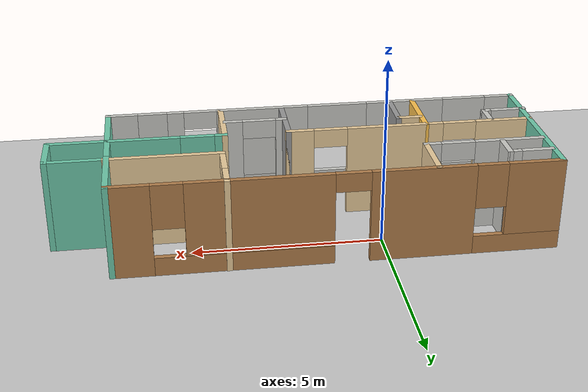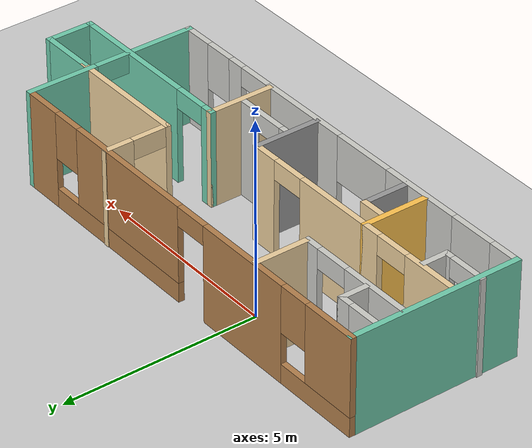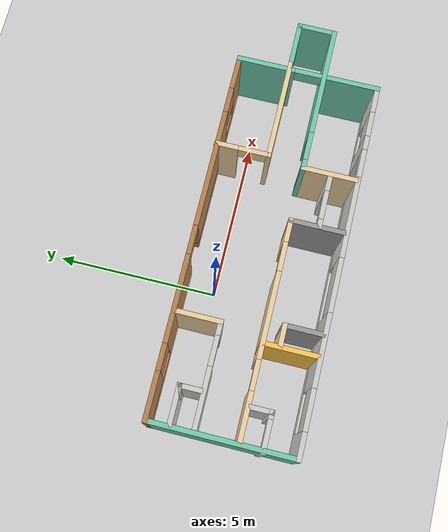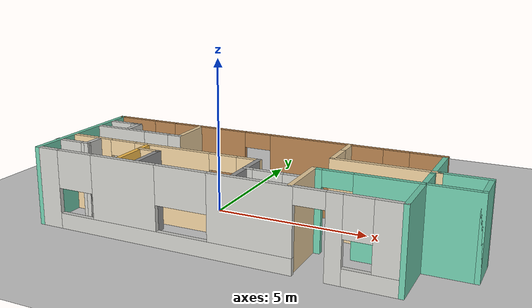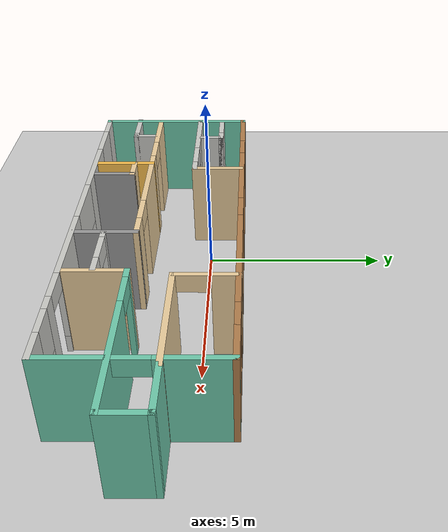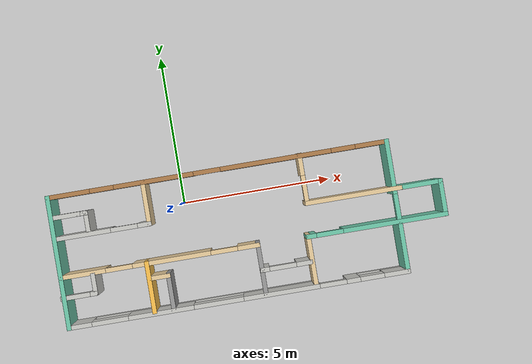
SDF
<sdf version="1.6">
 <world name="default">
  <model name="ground_plane">
   <static>1</static>
   <link name="link">
    <collision name="collision">
     <geometry><plane><normal>0 0 1</normal><size>100 100</size></plane></geometry>
     <surface>
      <contact><collide_bitmask>65535</collide_bitmask></contact>
      <friction><ode><mu>100</mu><mu2>50</mu2></ode></friction>
     </surface>
    </collision>
    <visual name="visual">
     <cast_shadows>0</cast_shadows>
     <geometry><plane><normal>0 0 1</normal><size>100 100</size></plane></geometry>
     <material>
      <script><uri>file://media/materials/scripts/gazebo.material</uri><name>Gazebo/Grey</name></script>
     </material>
    </visual>
   </link>
  </model>
  <model name="world">
   <pose>2.0565 -1.24663 0 0 -0 0</pose>
   <link name="Wall_1">
    <collision name="Wall_1_Collision">
     <geometry><box><size>4.5 0.15 2.5</size></box></geometry>
     <pose>0 0 1.25 0 -0 0</pose>
    </collision>
    <visual name="Wall_1_Visual">
     <pose>0 0 1.25 0 -0 0</pose>
     <geometry><box><size>4.5 0.15 2.5</size></box></geometry>
     <material>
      <script><uri>file://media/materials/scripts/gazebo.material</uri><name>Gazebo/Grey</name></script>
      <ambient>0.435294 0.796078 0.67451 1</ambient>
     </material>
     <meta><layer>0</layer></meta>
    </visual>
    <pose>-6.42328 -0.007904 0 0 0 -1.5708</pose>
   </link>
   <link name="Wall_10">
    <pose>4.16351 -0.517095 0 0 -0 0</pose>
    <visual name="Wall_10_Visual_0">
     <pose>-2.20046 0 1.25 0 -0 0</pose>
     <geometry><box><size>0.349089 0.15 2.5</size></box></geometry>
     <material>
      <script><uri>file://media/materials/scripts/gazebo.material</uri><name>Gazebo/Grey</name></script>
      <ambient>0.435294 0.796078 0.67451 1</ambient>
     </material>
     <meta><layer>0</layer></meta>
    </visual>
    <collision name="Wall_10_Collision_0">
     <geometry><box><size>0.349089 0.15 2.5</size></box></geometry>
     <pose>-2.20046 0 1.25 0 -0 0</pose>
    </collision>
    <visual name="Wall_10_Visual_1">
     <pose>0.624544 0 1.25 0 -0 0</pose>
     <geometry><box><size>3.50091 0.15 2.5</size></box></geometry>
     <material>
      <script><uri>file://media/materials/scripts/gazebo.material</uri><name>Gazebo/Grey</name></script>
      <ambient>0.435294 0.796078 0.67451 1</ambient>
     </material>
     <meta><layer>0</layer></meta>
    </visual>
    <collision name="Wall_10_Collision_1">
     <geometry><box><size>3.50091 0.15 2.5</size></box></geometry>
     <pose>0.624544 0 1.25 0 -0 0</pose>
    </collision>
    <visual name="Wall_10_Visual_2">
     <pose>-1.57591 0 2.25 0 -0 0</pose>
     <geometry><box><size>0.9 0.15 0.5</size></box></geometry>
     <material>
      <script><uri>file://media/materials/scripts/gazebo.material</uri><name>Gazebo/Grey</name></script>
      <ambient>0.435294 0.796078 0.67451 1</ambient>
     </material>
     <meta><layer>0</layer></meta>
    </visual>
    <collision name="Wall_10_Collision_2">
     <geometry><box><size>0.9 0.15 0.5</size></box></geometry>
     <pose>-1.57591 0 2.25 0 -0 0</pose>
    </collision>
   </link>
   <link name="Wall_11">
    <collision name="Wall_11_Collision">
     <geometry><box><size>1.25 0.15 2.5</size></box></geometry>
     <pose>0 0 1.25 0 -0 0</pose>
    </collision>
    <visual name="Wall_11_Visual">
     <pose>0 0 1.25 0 -0 0</pose>
     <geometry><box><size>1.25 0.15 2.5</size></box></geometry>
     <material>
      <script><uri>file://media/materials/scripts/gazebo.material</uri><name>Gazebo/Grey</name></script>
      <ambient>0.435294 0.796078 0.67451 1</ambient>
     </material>
     <meta><layer>0</layer></meta>
    </visual>
    <pose>6.46351 0.032905 0 0 -0 1.5708</pose>
   </link>
   <link name="Wall_12">
    <collision name="Wall_12_Collision">
     <geometry><box><size>1.5 0.15 2.5</size></box></geometry>
     <pose>0 0 1.25 0 -0 0</pose>
    </collision>
    <visual name="Wall_12_Visual">
     <pose>0 0 1.25 0 -0 0</pose>
     <geometry><box><size>1.5 0.15 2.5</size></box></geometry>
     <material>
      <script><uri>file://media/materials/scripts/gazebo.material</uri><name>Gazebo/Grey</name></script>
      <ambient>0.435294 0.796078 0.67451 1</ambient>
     </material>
     <meta><layer>0</layer></meta>
    </visual>
    <pose>5.78851 0.582905 0 0 -0 3.14159</pose>
   </link>
   <link name="Wall_14">
    <collision name="Wall_14_Collision">
     <geometry><box><size>1.75 0.15 2.5</size></box></geometry>
     <pose>0 0 1.25 0 -0 0</pose>
    </collision>
    <visual name="Wall_14_Visual">
     <pose>0 0 1.25 0 -0 0</pose>
     <geometry><box><size>1.75 0.15 2.5</size></box></geometry>
     <material>
      <script><uri>file://media/materials/scripts/gazebo.material</uri><name>Gazebo/Grey</name></script>
      <ambient>1 0.764706 0.305882 1</ambient>
     </material>
     <meta><layer>0</layer></meta>
    </visual>
    <pose>-3.54704 -1.30801 0 0 0 -1.5708</pose>
   </link>
   <link name="Wall_16">
    <pose>-4.79283 0.779259 0 0 -0 0</pose>
    <visual name="Wall_16_Visual_0">
     <pose>-0.68614 0 1.25 0 -0 0</pose>
     <geometry><box><size>1.87772 0.15 2.5</size></box></geometry>
     <material>
      <script><uri>file://media/materials/scripts/gazebo.material</uri><name>Gazebo/CeilingTiled</name></script>
      <ambient>0.921569 0.807843 0.615686 1</ambient>
     </material>
     <meta><layer>0</layer></meta>
    </visual>
    <collision name="Wall_16_Collision_0">
     <geometry><box><size>1.87772 0.15 2.5</size></box></geometry>
     <pose>-0.68614 0 1.25 0 -0 0</pose>
    </collision>
    <visual name="Wall_16_Visual_1">
     <pose>1.38886 0 1.25 0 -0 0</pose>
     <geometry><box><size>0.47228 0.15 2.5</size></box></geometry>
     <material>
      <script><uri>file://media/materials/scripts/gazebo.material</uri><name>Gazebo/CeilingTiled</name></script>
      <ambient>0.921569 0.807843 0.615686 1</ambient>
     </material>
     <meta><layer>0</layer></meta>
    </visual>
    <collision name="Wall_16_Collision_1">
     <geometry><box><size>0.47228 0.15 2.5</size></box></geometry>
     <pose>1.38886 0 1.25 0 -0 0</pose>
    </collision>
    <visual name="Wall_16_Visual_2">
     <pose>0.70272 0 2.25 0 -0 0</pose>
     <geometry><box><size>0.9 0.15 0.5</size></box></geometry>
     <material>
      <script><uri>file://media/materials/scripts/gazebo.material</uri><name>Gazebo/CeilingTiled</name></script>
      <ambient>0.921569 0.807843 0.615686 1</ambient>
     </material>
     <meta><layer>0</layer></meta>
    </visual>
    <collision name="Wall_16_Collision_2">
     <geometry><box><size>0.9 0.15 0.5</size></box></geometry>
     <pose>0.70272 0 2.25 0 -0 0</pose>
    </collision>
   </link>
   <link name="Wall_17">
    <collision name="Wall_17_Collision">
     <geometry><box><size>1.5 0.15 2.5</size></box></geometry>
     <pose>0 0 1.25 0 -0 0</pose>
    </collision>
    <visual name="Wall_17_Visual">
     <pose>0 0 1.25 0 -0 0</pose>
     <geometry><box><size>1.5 0.15 2.5</size></box></geometry>
     <material>
      <script><uri>file://media/materials/scripts/gazebo.material</uri><name>Gazebo/Grey</name></script>
      <ambient>0.921569 0.807843 0.615686 1</ambient>
     </material>
     <meta><layer>0</layer></meta>
    </visual>
    <pose>-3.24283 1.45426 0 0 -0 1.5708</pose>
   </link>
   <link name="Wall_2">
    <pose>-0.748282 -2.1829 0 0 -0 0</pose>
    <visual name="Wall_2_Visual_0">
     <pose>-5.32921 0 1.25 0 -0 0</pose>
     <geometry><box><size>0.841587 0.15 2.5</size></box></geometry>
     <material>
      <script><uri>file://media/materials/scripts/gazebo.material</uri><name>Gazebo/CeilingTiled</name></script>
      <ambient>0.435294 0.796078 0.67451 1</ambient>
     </material>
     <meta><layer>0</layer></meta>
    </visual>
    <collision name="Wall_2_Collision_0">
     <geometry><box><size>0.841587 0.15 2.5</size></box></geometry>
     <pose>-5.32921 0 1.25 0 -0 0</pose>
    </collision>
    <visual name="Wall_2_Visual_1">
     <pose>3.85366 0 1.25 0 -0 0</pose>
     <geometry><box><size>0.457382 0.15 2.5</size></box></geometry>
     <material>
      <script><uri>file://media/materials/scripts/gazebo.material</uri><name>Gazebo/CeilingTiled</name></script>
      <ambient>0.435294 0.796078 0.67451 1</ambient>
     </material>
     <meta><layer>0</layer></meta>
    </visual>
    <collision name="Wall_2_Collision_1">
     <geometry><box><size>0.457382 0.15 2.5</size></box></geometry>
     <pose>3.85366 0 1.25 0 -0 0</pose>
    </collision>
    <visual name="Wall_2_Visual_2">
     <pose>-1.09172 0 0.25 0 -0 0</pose>
     <geometry><box><size>7.63338 0.15 0.5</size></box></geometry>
     <material>
      <script><uri>file://media/materials/scripts/gazebo.material</uri><name>Gazebo/CeilingTiled</name></script>
      <ambient>0.435294 0.796078 0.67451 1</ambient>
     </material>
     <meta><layer>0</layer></meta>
    </visual>
    <collision name="Wall_2_Collision_2">
     <geometry><box><size>7.63338 0.15 0.5</size></box></geometry>
     <pose>-1.09172 0 0.25 0 -0 0</pose>
    </collision>
    <visual name="Wall_2_Visual_3">
     <pose>4.91618 0 0.25 0 -0 0</pose>
     <geometry><box><size>1.66765 0.15 0.5</size></box></geometry>
     <material>
      <script><uri>file://media/materials/scripts/gazebo.material</uri><name>Gazebo/CeilingTiled</name></script>
      <ambient>0.435294 0.796078 0.67451 1</ambient>
     </material>
     <meta><layer>0</layer></meta>
    </visual>
    <collision name="Wall_2_Collision_3">
     <geometry><box><size>1.66765 0.15 0.5</size></box></geometry>
     <pose>4.91618 0 0.25 0 -0 0</pose>
    </collision>
    <visual name="Wall_2_Visual_4">
     <pose>-2.58757 0 1.5 0 -0 0</pose>
     <geometry><box><size>2.19692 0.15 2</size></box></geometry>
     <material>
      <script><uri>file://media/materials/scripts/gazebo.material</uri><name>Gazebo/CeilingTiled</name></script>
      <ambient>0.435294 0.796078 0.67451 1</ambient>
     </material>
     <meta><layer>0</layer></meta>
    </visual>
    <collision name="Wall_2_Collision_4">
     <geometry><box><size>2.19692 0.15 2</size></box></geometry>
     <pose>-2.58757 0 1.5 0 -0 0</pose>
    </collision>
    <visual name="Wall_2_Visual_5">
     <pose>1.45037 0 1.5 0 -0 0</pose>
     <geometry><box><size>2.54919 0.15 2</size></box></geometry>
     <material>
      <script><uri>file://media/materials/scripts/gazebo.material</uri><name>Gazebo/CeilingTiled</name></script>
      <ambient>0.435294 0.796078 0.67451 1</ambient>
     </material>
     <meta><layer>0</layer></meta>
    </visual>
    <collision name="Wall_2_Collision_5">
     <geometry><box><size>2.54919 0.15 2</size></box></geometry>
     <pose>1.45037 0 1.5 0 -0 0</pose>
    </collision>
    <visual name="Wall_2_Visual_6">
     <pose>1.45037 0 1.5 0 -0 0</pose>
     <geometry><box><size>2.54919 0.15 2</size></box></geometry>
     <material>
      <script><uri>file://media/materials/scripts/gazebo.material</uri><name>Gazebo/CeilingTiled</name></script>
      <ambient>0.435294 0.796078 0.67451 1</ambient>
     </material>
     <meta><layer>0</layer></meta>
    </visual>
    <collision name="Wall_2_Collision_6">
     <geometry><box><size>2.54919 0.15 2</size></box></geometry>
     <pose>1.45037 0 1.5 0 -0 0</pose>
    </collision>
    <visual name="Wall_2_Visual_7">
     <pose>5.31618 0 1.5 0 -0 0</pose>
     <geometry><box><size>0.867646 0.15 2</size></box></geometry>
     <material>
      <script><uri>file://media/materials/scripts/gazebo.material</uri><name>Gazebo/CeilingTiled</name></script>
      <ambient>0.435294 0.796078 0.67451 1</ambient>
     </material>
     <meta><layer>0</layer></meta>
    </visual>
    <collision name="Wall_2_Collision_7">
     <geometry><box><size>0.867646 0.15 2</size></box></geometry>
     <pose>5.31618 0 1.5 0 -0 0</pose>
    </collision>
    <visual name="Wall_2_Visual_8">
     <pose>-4.29722 0 1.9 0 -0 0</pose>
     <geometry><box><size>1.22239 0.15 1.2</size></box></geometry>
     <material>
      <script><uri>file://media/materials/scripts/gazebo.material</uri><name>Gazebo/CeilingTiled</name></script>
      <ambient>0.435294 0.796078 0.67451 1</ambient>
     </material>
     <meta><layer>0</layer></meta>
    </visual>
    <collision name="Wall_2_Collision_8">
     <geometry><box><size>1.22239 0.15 1.2</size></box></geometry>
     <pose>-4.29722 0 1.9 0 -0 0</pose>
    </collision>
    <visual name="Wall_2_Visual_9">
     <pose>4.48235 0 1.9 0 -0 0</pose>
     <geometry><box><size>0.8 0.15 1.2</size></box></geometry>
     <material>
      <script><uri>file://media/materials/scripts/gazebo.material</uri><name>Gazebo/CeilingTiled</name></script>
      <ambient>0.435294 0.796078 0.67451 1</ambient>
     </material>
     <meta><layer>0</layer></meta>
    </visual>
    <collision name="Wall_2_Collision_9">
     <geometry><box><size>0.8 0.15 1.2</size></box></geometry>
     <pose>4.48235 0 1.9 0 -0 0</pose>
    </collision>
    <visual name="Wall_2_Visual_10">
     <pose>-0.656664 0 1.9 0 -0 0</pose>
     <geometry><box><size>1.66488 0.15 1.2</size></box></geometry>
     <material>
      <script><uri>file://media/materials/scripts/gazebo.material</uri><name>Gazebo/CeilingTiled</name></script>
      <ambient>0.435294 0.796078 0.67451 1</ambient>
     </material>
     <meta><layer>0</layer></meta>
    </visual>
    <collision name="Wall_2_Collision_10">
     <geometry><box><size>1.66488 0.15 1.2</size></box></geometry>
     <pose>-0.656664 0 1.9 0 -0 0</pose>
    </collision>
    <visual name="Wall_2_Visual_11">
     <pose>3.17497 0 2.25 0 -0 0</pose>
     <geometry><box><size>0.9 0.15 0.5</size></box></geometry>
     <material>
      <script><uri>file://media/materials/scripts/gazebo.material</uri><name>Gazebo/CeilingTiled</name></script>
      <ambient>0.435294 0.796078 0.67451 1</ambient>
     </material>
     <meta><layer>0</layer></meta>
    </visual>
    <collision name="Wall_2_Collision_11">
     <geometry><box><size>0.9 0.15 0.5</size></box></geometry>
     <pose>3.17497 0 2.25 0 -0 0</pose>
    </collision>
    <visual name="Wall_2_Visual_12">
     <pose>3.17497 0 2.25 0 -0 0</pose>
     <geometry><box><size>0.9 0.15 0.5</size></box></geometry>
     <material>
      <script><uri>file://media/materials/scripts/gazebo.material</uri><name>Gazebo/CeilingTiled</name></script>
      <ambient>0.435294 0.796078 0.67451 1</ambient>
     </material>
     <meta><layer>0</layer></meta>
    </visual>
    <collision name="Wall_2_Collision_12">
     <geometry><box><size>0.9 0.15 0.5</size></box></geometry>
     <pose>3.17497 0 2.25 0 -0 0</pose>
    </collision>
   </link>
   <link name="Wall_21">
    <collision name="Wall_21_Collision">
     <geometry><box><size>3.25 0.15 2.5</size></box></geometry>
     <pose>0 0 1.25 0 -0 0</pose>
    </collision>
    <visual name="Wall_21_Visual">
     <pose>0 0 1.25 0 -0 0</pose>
     <geometry><box><size>3.25 0.15 2.5</size></box></geometry>
     <material>
      <script><uri>file://media/materials/scripts/gazebo.material</uri><name>Gazebo/Grey</name></script>
      <ambient>0.921569 0.807843 0.615686 1</ambient>
     </material>
     <meta><layer>0</layer></meta>
    </visual>
    <pose>3.56351 0.582905 0 0 -0 3.14159</pose>
   </link>
   <link name="Wall_22">
    <pose>2.01351 1.38291 0 0 -0 1.5708</pose>
    <visual name="Wall_22_Visual_0">
     <pose>-0.823528 0 1.25 0 -0 0</pose>
     <geometry><box><size>0.102944 0.15 2.5</size></box></geometry>
     <material>
      <script><uri>file://media/materials/scripts/gazebo.material</uri><name>Gazebo/Grey</name></script>
      <ambient>0.921569 0.807843 0.615686 1</ambient>
     </material>
     <meta><layer>0</layer></meta>
    </visual>
    <collision name="Wall_22_Collision_0">
     <geometry><box><size>0.102944 0.15 2.5</size></box></geometry>
     <pose>-0.823528 0 1.25 0 -0 0</pose>
    </collision>
    <visual name="Wall_22_Visual_1">
     <pose>0.501472 0 1.25 0 -0 0</pose>
     <geometry><box><size>0.747056 0.15 2.5</size></box></geometry>
     <material>
      <script><uri>file://media/materials/scripts/gazebo.material</uri><name>Gazebo/Grey</name></script>
      <ambient>0.921569 0.807843 0.615686 1</ambient>
     </material>
     <meta><layer>0</layer></meta>
    </visual>
    <collision name="Wall_22_Collision_1">
     <geometry><box><size>0.747056 0.15 2.5</size></box></geometry>
     <pose>0.501472 0 1.25 0 -0 0</pose>
    </collision>
    <visual name="Wall_22_Visual_2">
     <pose>-0.322056 0 2.25 0 -0 0</pose>
     <geometry><box><size>0.9 0.15 0.5</size></box></geometry>
     <material>
      <script><uri>file://media/materials/scripts/gazebo.material</uri><name>Gazebo/Grey</name></script>
      <ambient>0.921569 0.807843 0.615686 1</ambient>
     </material>
     <meta><layer>0</layer></meta>
    </visual>
    <collision name="Wall_22_Collision_2">
     <geometry><box><size>0.9 0.15 0.5</size></box></geometry>
     <pose>-0.322056 0 2.25 0 -0 0</pose>
    </collision>
   </link>
   <link name="Wall_24">
    <pose>-5.81294 1.48323 0 0 -0 0</pose>
    <visual name="Wall_24_Visual_0">
     <pose>0 0 1.25 0 -0 0</pose>
     <geometry><box><size>1.25 0.15 2.5</size></box></geometry>
     <material>
      <script><uri>file://media/materials/scripts/gazebo.material</uri><name>Gazebo/CeilingTiled</name></script>
      <ambient>0.921569 0.807843 0.615686 1</ambient>
     </material>
     <meta><layer>0</layer></meta>
    </visual>
    <collision name="Wall_24_Collision_0">
     <geometry><box><size>1.25 0.15 2.5</size></box></geometry>
     <pose>0 0 1.25 0 -0 0</pose>
    </collision>
    <visual name="Wall_24_Visual_1">
     <pose>0.433465 0 1.25 0 -0 0</pose>
     <geometry><box><size>0.383069 0.15 2.5</size></box></geometry>
     <material>
      <script><uri>file://media/materials/scripts/gazebo.material</uri><name>Gazebo/CeilingTiled</name></script>
      <ambient>0.921569 0.807843 0.615686 1</ambient>
     </material>
     <meta><layer>0</layer></meta>
    </visual>
    <collision name="Wall_24_Collision_1">
     <geometry><box><size>0.383069 0.15 2.5</size></box></geometry>
     <pose>0.433465 0 1.25 0 -0 0</pose>
    </collision>
   </link>
   <link name="Wall_27">
    <collision name="Wall_27_Collision">
     <geometry><box><size>0.75 0.15 2.5</size></box></geometry>
     <pose>0 0 1.25 0 -0 0</pose>
    </collision>
    <visual name="Wall_27_Visual">
     <pose>0 0 1.25 0 -0 0</pose>
     <geometry><box><size>0.75 0.15 2.5</size></box></geometry>
     <material>
      <script><uri>file://media/materials/scripts/gazebo.material</uri><name>Gazebo/CeilingTiled</name></script>
      <ambient>0.921569 0.807843 0.615686 1</ambient>
     </material>
     <meta><layer>0</layer></meta>
    </visual>
    <pose>-5.26294 1.18323 0 0 0 -1.5708</pose>
   </link>
   <link name="Wall_29">
    <pose>-5.91351 -1.19187 0 0 -0 0</pose>
    <visual name="Wall_29_Visual_0">
     <pose>-0.581194 0 1.25 0 -0 0</pose>
     <geometry><box><size>0.087612 0.15 2.5</size></box></geometry>
     <material>
      <script><uri>file://media/materials/scripts/gazebo.material</uri><name>Gazebo/CeilingTiled</name></script>
      <ambient>1 1 1 1</ambient>
     </material>
     <meta><layer>0</layer></meta>
    </visual>
    <collision name="Wall_29_Collision_0">
     <geometry><box><size>0.087612 0.15 2.5</size></box></geometry>
     <pose>-0.581194 0 1.25 0 -0 0</pose>
    </collision>
    <visual name="Wall_29_Visual_1">
     <pose>0.493806 0 1.25 0 -0 0</pose>
     <geometry><box><size>0.262388 0.15 2.5</size></box></geometry>
     <material>
      <script><uri>file://media/materials/scripts/gazebo.material</uri><name>Gazebo/CeilingTiled</name></script>
      <ambient>1 1 1 1</ambient>
     </material>
     <meta><layer>0</layer></meta>
    </visual>
    <collision name="Wall_29_Collision_1">
     <geometry><box><size>0.262388 0.15 2.5</size></box></geometry>
     <pose>0.493806 0 1.25 0 -0 0</pose>
    </collision>
    <visual name="Wall_29_Visual_2">
     <pose>-0.087388 0 2.25 0 -0 0</pose>
     <geometry><box><size>0.9 0.15 0.5</size></box></geometry>
     <material>
      <script><uri>file://media/materials/scripts/gazebo.material</uri><name>Gazebo/CeilingTiled</name></script>
      <ambient>1 1 1 1</ambient>
     </material>
     <meta><layer>0</layer></meta>
    </visual>
    <collision name="Wall_29_Collision_2">
     <geometry><box><size>0.9 0.15 0.5</size></box></geometry>
     <pose>-0.087388 0 2.25 0 -0 0</pose>
    </collision>
   </link>
   <link name="Wall_3">
    <pose>4.92672 -0.007904 0 0 -0 1.5708</pose>
    <visual name="Wall_3_Visual_0">
     <pose>-1.36875 0 1.25 0 -0 0</pose>
     <geometry><box><size>1.76251 0.15 2.5</size></box></geometry>
     <material>
      <script><uri>file://media/materials/scripts/gazebo.material</uri><name>Gazebo/Grey</name></script>
      <ambient>0.435294 0.796078 0.67451 1</ambient>
     </material>
     <meta><layer>0</layer></meta>
    </visual>
    <collision name="Wall_3_Collision_0">
     <geometry><box><size>1.76251 0.15 2.5</size></box></geometry>
     <pose>-1.36875 0 1.25 0 -0 0</pose>
    </collision>
    <visual name="Wall_3_Visual_1">
     <pose>1.33125 0 1.25 0 -0 0</pose>
     <geometry><box><size>1.83749 0.15 2.5</size></box></geometry>
     <material>
      <script><uri>file://media/materials/scripts/gazebo.material</uri><name>Gazebo/Grey</name></script>
      <ambient>0.435294 0.796078 0.67451 1</ambient>
     </material>
     <meta><layer>0</layer></meta>
    </visual>
    <collision name="Wall_3_Collision_1">
     <geometry><box><size>1.83749 0.15 2.5</size></box></geometry>
     <pose>1.33125 0 1.25 0 -0 0</pose>
    </collision>
    <visual name="Wall_3_Visual_2">
     <pose>-0.037493 0 2.25 0 -0 0</pose>
     <geometry><box><size>0.9 0.15 0.5</size></box></geometry>
     <material>
      <script><uri>file://media/materials/scripts/gazebo.material</uri><name>Gazebo/Grey</name></script>
      <ambient>0.435294 0.796078 0.67451 1</ambient>
     </material>
     <meta><layer>0</layer></meta>
    </visual>
    <collision name="Wall_3_Collision_2">
     <geometry><box><size>0.9 0.15 0.5</size></box></geometry>
     <pose>-0.037493 0 2.25 0 -0 0</pose>
    </collision>
   </link>
   <link name="Wall_30">
    <collision name="Wall_30_Collision">
     <geometry><box><size>0.75 0.15 2.5</size></box></geometry>
     <pose>0 0 1.25 0 -0 0</pose>
    </collision>
    <visual name="Wall_30_Visual">
     <pose>0 0 1.25 0 -0 0</pose>
     <geometry><box><size>0.75 0.15 2.5</size></box></geometry>
     <material>
      <script><uri>file://media/materials/scripts/gazebo.material</uri><name>Gazebo/CeilingTiled</name></script>
      <ambient>1 1 1 1</ambient>
     </material>
     <meta><layer>0</layer></meta>
    </visual>
    <pose>-5.36351 -0.891871 0 0 -0 1.5708</pose>
   </link>
   <link name="Wall_32">
    <collision name="Wall_32_Collision">
     <geometry><box><size>0.75 0.15 2.5</size></box></geometry>
     <pose>0 0 1.25 0 -0 0</pose>
    </collision>
    <visual name="Wall_32_Visual">
     <pose>0 0 1.25 0 -0 0</pose>
     <geometry><box><size>0.75 0.15 2.5</size></box></geometry>
     <material>
      <script><uri>file://media/materials/scripts/gazebo.material</uri><name>Gazebo/Grey</name></script>
      <ambient>0.921569 0.807843 0.615686 1</ambient>
     </material>
     <meta><layer>0</layer></meta>
    </visual>
    <pose>-3.20682 -1.01085 0 0 -0 0</pose>
   </link>
   <link name="Wall_33">
    <collision name="Wall_33_Collision">
     <geometry><box><size>1.25 0.15 2.5</size></box></geometry>
     <pose>0 0 1.25 0 -0 0</pose>
    </collision>
    <visual name="Wall_33_Visual">
     <pose>0 0 1.25 0 -0 0</pose>
     <geometry><box><size>1.25 0.15 2.5</size></box></geometry>
     <material>
      <script><uri>file://media/materials/scripts/gazebo.material</uri><name>Gazebo/Grey</name></script>
      <ambient>1 1 1 1</ambient>
     </material>
     <meta><layer>0</layer></meta>
    </visual>
    <pose>-2.90681 -1.56085 0 0 0 -1.5708</pose>
   </link>
   <link name="Wall_35">
    <pose>0.994083 -1.35278 0 0 -0 0</pose>
    <visual name="Wall_35_Visual_0">
     <pose>-0.720569 0 1.25 0 -0 0</pose>
     <geometry><box><size>0.308861 0.15 2.5</size></box></geometry>
     <material>
      <script><uri>file://media/materials/scripts/gazebo.material</uri><name>Gazebo/CeilingTiled</name></script>
      <ambient>0.921569 0.807843 0.615686 1</ambient>
     </material>
     <meta><layer>0</layer></meta>
    </visual>
    <collision name="Wall_35_Collision_0">
     <geometry><box><size>0.308861 0.15 2.5</size></box></geometry>
     <pose>-0.720569 0 1.25 0 -0 0</pose>
    </collision>
    <visual name="Wall_35_Visual_1">
     <pose>0.604431 0 1.25 0 -0 0</pose>
     <geometry><box><size>0.541139 0.15 2.5</size></box></geometry>
     <material>
      <script><uri>file://media/materials/scripts/gazebo.material</uri><name>Gazebo/CeilingTiled</name></script>
      <ambient>0.921569 0.807843 0.615686 1</ambient>
     </material>
     <meta><layer>0</layer></meta>
    </visual>
    <collision name="Wall_35_Collision_1">
     <geometry><box><size>0.541139 0.15 2.5</size></box></geometry>
     <pose>0.604431 0 1.25 0 -0 0</pose>
    </collision>
    <visual name="Wall_35_Visual_2">
     <pose>-0.116139 0 2.25 0 -0 0</pose>
     <geometry><box><size>0.9 0.15 0.5</size></box></geometry>
     <material>
      <script><uri>file://media/materials/scripts/gazebo.material</uri><name>Gazebo/CeilingTiled</name></script>
      <ambient>0.921569 0.807843 0.615686 1</ambient>
     </material>
     <meta><layer>0</layer></meta>
    </visual>
    <collision name="Wall_35_Collision_2">
     <geometry><box><size>0.9 0.15 0.5</size></box></geometry>
     <pose>-0.116139 0 2.25 0 -0 0</pose>
    </collision>
   </link>
   <link name="Wall_4">
    <pose>-0.748282 2.1671 0 0 -0 3.14159</pose>
    <visual name="Wall_4_Visual_0">
     <pose>-5.18544 0 1.25 0 -0 0</pose>
     <geometry><box><size>1.12912 0.15 2.5</size></box></geometry>
     <material>
      <script><uri>file://media/materials/scripts/gazebo.material</uri><name>Gazebo/Wood</name></script>
      <ambient>0.435294 0.796078 0.67451 1</ambient>
     </material>
     <meta><layer>0</layer></meta>
    </visual>
    <collision name="Wall_4_Collision_0">
     <geometry><box><size>1.12912 0.15 2.5</size></box></geometry>
     <pose>-5.18544 0 1.25 0 -0 0</pose>
    </collision>
    <visual name="Wall_4_Visual_1">
     <pose>2.12984 0 1.25 0 -0 0</pose>
     <geometry><box><size>2.66988 0.15 2.5</size></box></geometry>
     <material>
      <script><uri>file://media/materials/scripts/gazebo.material</uri><name>Gazebo/Wood</name></script>
      <ambient>0.435294 0.796078 0.67451 1</ambient>
     </material>
     <meta><layer>0</layer></meta>
    </visual>
    <collision name="Wall_4_Collision_1">
     <geometry><box><size>2.66988 0.15 2.5</size></box></geometry>
     <pose>2.12984 0 1.25 0 -0 0</pose>
    </collision>
    <visual name="Wall_4_Visual_2">
     <pose>-2.36299 0 0.25 0 -0 0</pose>
     <geometry><box><size>4.51578 0.15 0.5</size></box></geometry>
     <material>
      <script><uri>file://media/materials/scripts/gazebo.material</uri><name>Gazebo/Wood</name></script>
      <ambient>0.435294 0.796078 0.67451 1</ambient>
     </material>
     <meta><layer>0</layer></meta>
    </visual>
    <collision name="Wall_4_Collision_2">
     <geometry><box><size>4.51578 0.15 0.5</size></box></geometry>
     <pose>-2.36299 0 0.25 0 -0 0</pose>
    </collision>
    <visual name="Wall_4_Visual_3">
     <pose>4.60739 0 0.25 0 -0 0</pose>
     <geometry><box><size>2.28522 0.15 0.5</size></box></geometry>
     <material>
      <script><uri>file://media/materials/scripts/gazebo.material</uri><name>Gazebo/Wood</name></script>
      <ambient>0.435294 0.796078 0.67451 1</ambient>
     </material>
     <meta><layer>0</layer></meta>
    </visual>
    <collision name="Wall_4_Collision_3">
     <geometry><box><size>2.28522 0.15 0.5</size></box></geometry>
     <pose>4.60739 0 0.25 0 -0 0</pose>
    </collision>
    <visual name="Wall_4_Visual_4">
     <pose>-1.96299 0 1.5 0 -0 0</pose>
     <geometry><box><size>3.71578 0.15 2</size></box></geometry>
     <material>
      <script><uri>file://media/materials/scripts/gazebo.material</uri><name>Gazebo/Wood</name></script>
      <ambient>0.435294 0.796078 0.67451 1</ambient>
     </material>
     <meta><layer>0</layer></meta>
    </visual>
    <collision name="Wall_4_Collision_4">
     <geometry><box><size>3.71578 0.15 2</size></box></geometry>
     <pose>-1.96299 0 1.5 0 -0 0</pose>
    </collision>
    <visual name="Wall_4_Visual_5">
     <pose>-1.96299 0 1.5 0 -0 0</pose>
     <geometry><box><size>3.71578 0.15 2</size></box></geometry>
     <material>
      <script><uri>file://media/materials/scripts/gazebo.material</uri><name>Gazebo/Wood</name></script>
      <ambient>0.435294 0.796078 0.67451 1</ambient>
     </material>
     <meta><layer>0</layer></meta>
    </visual>
    <collision name="Wall_4_Collision_5">
     <geometry><box><size>3.71578 0.15 2</size></box></geometry>
     <pose>-1.96299 0 1.5 0 -0 0</pose>
    </collision>
    <visual name="Wall_4_Visual_6">
     <pose>5.00739 0 1.5 0 -0 0</pose>
     <geometry><box><size>1.48522 0.15 2</size></box></geometry>
     <material>
      <script><uri>file://media/materials/scripts/gazebo.material</uri><name>Gazebo/Wood</name></script>
      <ambient>0.435294 0.796078 0.67451 1</ambient>
     </material>
     <meta><layer>0</layer></meta>
    </visual>
    <collision name="Wall_4_Collision_6">
     <geometry><box><size>1.48522 0.15 2</size></box></geometry>
     <pose>5.00739 0 1.5 0 -0 0</pose>
    </collision>
    <visual name="Wall_4_Visual_7">
     <pose>-4.22088 0 1.9 0 -0 0</pose>
     <geometry><box><size>0.8 0.15 1.2</size></box></geometry>
     <material>
      <script><uri>file://media/materials/scripts/gazebo.material</uri><name>Gazebo/Wood</name></script>
      <ambient>0.435294 0.796078 0.67451 1</ambient>
     </material>
     <meta><layer>0</layer></meta>
    </visual>
    <collision name="Wall_4_Collision_7">
     <geometry><box><size>0.8 0.15 1.2</size></box></geometry>
     <pose>-4.22088 0 1.9 0 -0 0</pose>
    </collision>
    <visual name="Wall_4_Visual_8">
     <pose>3.86478 0 1.9 0 -0 0</pose>
     <geometry><box><size>0.8 0.15 1.2</size></box></geometry>
     <material>
      <script><uri>file://media/materials/scripts/gazebo.material</uri><name>Gazebo/Wood</name></script>
      <ambient>0.435294 0.796078 0.67451 1</ambient>
     </material>
     <meta><layer>0</layer></meta>
    </visual>
    <collision name="Wall_4_Collision_8">
     <geometry><box><size>0.8 0.15 1.2</size></box></geometry>
     <pose>3.86478 0 1.9 0 -0 0</pose>
    </collision>
    <visual name="Wall_4_Visual_9">
     <pose>0.344903 0 2.25 0 -0 0</pose>
     <geometry><box><size>0.9 0.15 0.5</size></box></geometry>
     <material>
      <script><uri>file://media/materials/scripts/gazebo.material</uri><name>Gazebo/Wood</name></script>
      <ambient>0.435294 0.796078 0.67451 1</ambient>
     </material>
     <meta><layer>0</layer></meta>
    </visual>
    <collision name="Wall_4_Collision_9">
     <geometry><box><size>0.9 0.15 0.5</size></box></geometry>
     <pose>0.344903 0 2.25 0 -0 0</pose>
    </collision>
    <visual name="Wall_4_Visual_10">
     <pose>0.344903 0 2.25 0 -0 0</pose>
     <geometry><box><size>0.9 0.15 0.5</size></box></geometry>
     <material>
      <script><uri>file://media/materials/scripts/gazebo.material</uri><name>Gazebo/Wood</name></script>
      <ambient>0.435294 0.796078 0.67451 1</ambient>
     </material>
     <meta><layer>0</layer></meta>
    </visual>
    <collision name="Wall_4_Collision_10">
     <geometry><box><size>0.9 0.15 0.5</size></box></geometry>
     <pose>0.344903 0 2.25 0 -0 0</pose>
    </collision>
   </link>
   <link name="Wall_6">
    <pose>-3.12328 -0.50801 0 0 -0 0</pose>
    <visual name="Wall_6_Visual_0">
     <pose>-2.58699 0 1.25 0 -0 0</pose>
     <geometry><box><size>1.57602 0.15 2.5</size></box></geometry>
     <material>
      <script><uri>file://media/materials/scripts/gazebo.material</uri><name>Gazebo/Grey</name></script>
      <ambient>0.921569 0.807843 0.615686 1</ambient>
     </material>
     <meta><layer>0</layer></meta>
    </visual>
    <collision name="Wall_6_Collision_0">
     <geometry><box><size>1.57602 0.15 2.5</size></box></geometry>
     <pose>-2.58699 0 1.25 0 -0 0</pose>
    </collision>
    <visual name="Wall_6_Visual_1">
     <pose>0.410954 0 1.25 0 -0 0</pose>
     <geometry><box><size>2.61987 0.15 2.5</size></box></geometry>
     <material>
      <script><uri>file://media/materials/scripts/gazebo.material</uri><name>Gazebo/Grey</name></script>
      <ambient>0.921569 0.807843 0.615686 1</ambient>
     </material>
     <meta><layer>0</layer></meta>
    </visual>
    <collision name="Wall_6_Collision_1">
     <geometry><box><size>2.61987 0.15 2.5</size></box></geometry>
     <pose>0.410954 0 1.25 0 -0 0</pose>
    </collision>
    <visual name="Wall_6_Visual_2">
     <pose>2.99795 0 1.25 0 -0 0</pose>
     <geometry><box><size>0.754108 0.15 2.5</size></box></geometry>
     <material>
      <script><uri>file://media/materials/scripts/gazebo.material</uri><name>Gazebo/Grey</name></script>
      <ambient>0.921569 0.807843 0.615686 1</ambient>
     </material>
     <meta><layer>0</layer></meta>
    </visual>
    <collision name="Wall_6_Collision_2">
     <geometry><box><size>0.754108 0.15 2.5</size></box></geometry>
     <pose>2.99795 0 1.25 0 -0 0</pose>
    </collision>
    <visual name="Wall_6_Visual_3">
     <pose>-1.34898 0 2.25 0 -0 0</pose>
     <geometry><box><size>0.9 0.15 0.5</size></box></geometry>
     <material>
      <script><uri>file://media/materials/scripts/gazebo.material</uri><name>Gazebo/Grey</name></script>
      <ambient>0.921569 0.807843 0.615686 1</ambient>
     </material>
     <meta><layer>0</layer></meta>
    </visual>
    <collision name="Wall_6_Collision_3">
     <geometry><box><size>0.9 0.15 0.5</size></box></geometry>
     <pose>-1.34898 0 2.25 0 -0 0</pose>
    </collision>
    <visual name="Wall_6_Visual_4">
     <pose>2.17089 0 2.25 0 -0 0</pose>
     <geometry><box><size>0.9 0.15 0.5</size></box></geometry>
     <material>
      <script><uri>file://media/materials/scripts/gazebo.material</uri><name>Gazebo/Grey</name></script>
      <ambient>0.921569 0.807843 0.615686 1</ambient>
     </material>
     <meta><layer>0</layer></meta>
    </visual>
    <collision name="Wall_6_Collision_4">
     <geometry><box><size>0.9 0.15 0.5</size></box></geometry>
     <pose>2.17089 0 2.25 0 -0 0</pose>
    </collision>
   </link>
   <link name="Wall_7">
    <collision name="Wall_7_Collision">
     <geometry><box><size>1.75 0.15 2.5</size></box></geometry>
     <pose>0 0 1.25 0 -0 0</pose>
    </collision>
    <visual name="Wall_7_Visual">
     <pose>0 0 1.25 0 -0 0</pose>
     <geometry><box><size>1.75 0.15 2.5</size></box></geometry>
     <material>
      <script><uri>file://media/materials/scripts/gazebo.material</uri><name>Gazebo/Grey</name></script>
      <ambient>1 1 1 1</ambient>
     </material>
     <meta><layer>0</layer></meta>
    </visual>
    <pose>0.176718 -1.30801 0 0 0 -1.5708</pose>
   </link>
   <link name="Wall_9">
    <collision name="Wall_9_Collision">
     <geometry><box><size>1.75 0.15 2.5</size></box></geometry>
     <pose>0 0 1.25 0 -0 0</pose>
    </collision>
    <visual name="Wall_9_Visual">
     <pose>0 0 1.25 0 -0 0</pose>
     <geometry><box><size>1.75 0.15 2.5</size></box></geometry>
     <material>
      <script><uri>file://media/materials/scripts/gazebo.material</uri><name>Gazebo/Grey</name></script>
      <ambient>0.921569 0.807843 0.615686 1</ambient>
     </material>
     <meta><layer>0</layer></meta>
    </visual>
    <pose>1.86351 -1.31709 0 0 -0 1.5708</pose>
   </link>
   <static>1</static>
  </model>
 </world>
</sdf>
